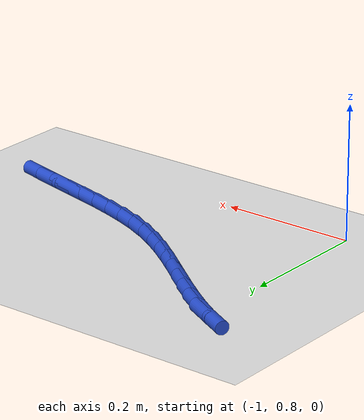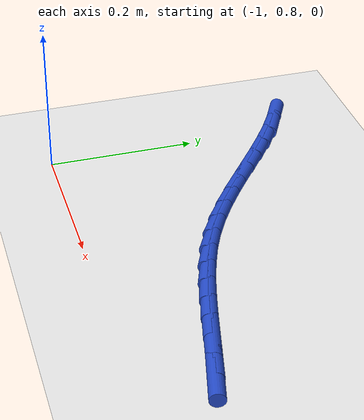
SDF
<sdf version="1.6">
 <world name="default">
  <model name="ground_plane">
   <static>1</static>
   <link name="link">
    <collision name="collision">
     <geometry><plane><normal>0 0 1</normal><size>100 100</size></plane></geometry>
     <surface><friction><ode><mu>100</mu><mu2>50</mu2></ode></friction></surface>
    </collision>
    <visual name="visual">
     <cast_shadows>0</cast_shadows>
     <geometry><plane><normal>0 0 1</normal><size>100 100</size></plane></geometry>
     <material>
      <script><uri>file://media/materials/scripts/gazebo.material</uri><name>Gazebo/WhiteGlow</name></script>
     </material>
    </visual>
   </link>
  </model>
  <model name="line">
   <link name="link_34">
    <pose>-0.5255574176818177 0.8884533875786376 0.01 0 1.57 -0.24859931215305123</pose>
    <collision name="collision">
     <geometry><cylinder><radius>0.01</radius><length>0.08</length></cylinder></geometry>
    </collision>
    <visual name="visual">
     <material>
      <script><name>Gazebo/Blue</name><uri>file://media/materials/scripts/gazebo.material</uri></script>
     </material>
     <geometry><cylinder><radius>0.01</radius><length>0.08</length></cylinder></geometry>
    </visual>
   </link>
   <link name="link_35">
    <pose>-0.5571381462530762 0.8964701694753467 0.01 0 1.57 -0.2358273862545495</pose>
    <collision name="collision">
     <geometry><cylinder><radius>0.01</radius><length>0.08</length></cylinder></geometry>
    </collision>
    <visual name="visual">
     <material>
      <script><name>Gazebo/Blue</name><uri>file://media/materials/scripts/gazebo.material</uri></script>
     </material>
     <geometry><cylinder><radius>0.01</radius><length>0.08</length></cylinder></geometry>
    </visual>
   </link>
   <link name="link_36">
    <pose>-0.5889480391941898 0.9041140451527288 0.01 0 1.57 -0.23601273243932025</pose>
    <collision name="collision">
     <geometry><cylinder><radius>0.01</radius><length>0.08</length></cylinder></geometry>
    </collision>
    <visual name="visual">
     <material>
      <script><name>Gazebo/Blue</name><uri>file://media/materials/scripts/gazebo.material</uri></script>
     </material>
     <geometry><cylinder><radius>0.01</radius><length>0.08</length></cylinder></geometry>
    </visual>
   </link>
   <link name="link_37">
    <pose>-0.6208033666331018 0.9117750841547666 0.01 0 1.57 -0.24909951020728224</pose>
    <collision name="collision">
     <geometry><cylinder><radius>0.01</radius><length>0.08</length></cylinder></geometry>
    </collision>
    <visual name="visual">
     <material>
      <script><name>Gazebo/Blue</name><uri>file://media/materials/scripts/gazebo.material</uri></script>
     </material>
     <geometry><cylinder><radius>0.01</radius><length>0.08</length></cylinder></geometry>
    </visual>
   </link>
   <link name="link_38">
    <pose>-0.6525203986977548 0.9198433560254419 0.01 0 1.57 -0.27522175141478333</pose>
    <collision name="collision">
     <geometry><cylinder><radius>0.01</radius><length>0.08</length></cylinder></geometry>
    </collision>
    <visual name="visual">
     <material>
      <script><name>Gazebo/Blue</name><uri>file://media/materials/scripts/gazebo.material</uri></script>
     </material>
     <geometry><cylinder><radius>0.01</radius><length>0.08</length></cylinder></geometry>
    </visual>
   </link>
   <link name="link_39">
    <pose>-0.6839154055160909 0.9287089303087362 0.01 0 1.57 -0.3146400045188415</pose>
    <collision name="collision">
     <geometry><cylinder><radius>0.01</radius><length>0.08</length></cylinder></geometry>
    </collision>
    <visual name="visual">
     <material>
      <script><name>Gazebo/Blue</name><uri>file://media/materials/scripts/gazebo.material</uri></script>
     </material>
     <geometry><cylinder><radius>0.01</radius><length>0.08</length></cylinder></geometry>
    </visual>
   </link>
   <link name="link_40">
    <pose>-0.7148046572160536 0.9387618765486323 0.01 0 1.57 -0.3676091250936983</pose>
    <collision name="collision">
     <geometry><cylinder><radius>0.01</radius><length>0.08</length></cylinder></geometry>
    </collision>
    <visual name="visual">
     <material>
      <script><name>Gazebo/Blue</name><uri>file://media/materials/scripts/gazebo.material</uri></script>
     </material>
     <geometry><cylinder><radius>0.01</radius><length>0.08</length></cylinder></geometry>
    </visual>
   </link>
   <link name="link_41">
    <pose>-0.7450044239255853 0.9503922642891117 0.01 0 1.57 -0.43416515468444045</pose>
    <collision name="collision">
     <geometry><cylinder><radius>0.01</radius><length>0.08</length></cylinder></geometry>
    </collision>
    <visual name="visual">
     <material>
      <script><name>Gazebo/Blue</name><uri>file://media/materials/scripts/gazebo.material</uri></script>
     </material>
     <geometry><cylinder><radius>0.01</radius><length>0.08</length></cylinder></geometry>
    </visual>
   </link>
   <link name="link_42">
    <pose>-0.7743309757726284 0.9639901630741567 0.01 0 1.57 -0.5089399456784874</pose>
    <collision name="collision">
     <geometry><cylinder><radius>0.01</radius><length>0.08</length></cylinder></geometry>
    </collision>
    <visual name="visual">
     <material>
      <script><name>Gazebo/Blue</name><uri>file://media/materials/scripts/gazebo.material</uri></script>
     </material>
     <geometry><cylinder><radius>0.01</radius><length>0.08</length></cylinder></geometry>
    </visual>
   </link>
   <link name="link_43">
    <pose>-0.8026647938310223 0.9797995215825887 0.01 0 1.57 -0.5715035804731994</pose>
    <collision name="collision">
     <geometry><cylinder><radius>0.01</radius><length>0.08</length></cylinder></geometry>
    </collision>
    <visual name="visual">
     <material>
      <script><name>Gazebo/Blue</name><uri>file://media/materials/scripts/gazebo.material</uri></script>
     </material>
     <geometry><cylinder><radius>0.01</radius><length>0.08</length></cylinder></geometry>
    </visual>
   </link>
   <link name="link_44">
    <pose>-0.8301463347246314 0.9974726782660338 0.01 0 1.57 -0.6170683168024339</pose>
    <collision name="collision">
     <geometry><cylinder><radius>0.01</radius><length>0.08</length></cylinder></geometry>
    </collision>
    <visual name="visual">
     <material>
      <script><name>Gazebo/Blue</name><uri>file://media/materials/scripts/gazebo.material</uri></script>
     </material>
     <geometry><cylinder><radius>0.01</radius><length>0.08</length></cylinder></geometry>
    </visual>
   </link>
   <link name="link_45">
    <pose>-0.8569818414294227 1.0165122656568082 0.01 0 1.57 -0.6462078906689612</pose>
    <collision name="collision">
     <geometry><cylinder><radius>0.01</radius><length>0.08</length></cylinder></geometry>
    </collision>
    <visual name="visual">
     <material>
      <script><name>Gazebo/Blue</name><uri>file://media/materials/scripts/gazebo.material</uri></script>
     </material>
     <geometry><cylinder><radius>0.01</radius><length>0.08</length></cylinder></geometry>
    </visual>
   </link>
   <link name="link_46">
    <pose>-0.88337755692565 1.0364209162774782 0.01 0 1.57 -0.6594215010777789</pose>
    <collision name="collision">
     <geometry><cylinder><radius>0.01</radius><length>0.08</length></cylinder></geometry>
    </collision>
    <visual name="visual">
     <material>
      <script><name>Gazebo/Blue</name><uri>file://media/materials/scripts/gazebo.material</uri></script>
     </material>
     <geometry><cylinder><radius>0.01</radius><length>0.08</length></cylinder></geometry>
    </visual>
   </link>
   <link name="link_47">
    <pose>-0.9095397241935659 1.056701262650609 0.01 0 1.57 -0.6569188849797652</pose>
    <collision name="collision">
     <geometry><cylinder><radius>0.01</radius><length>0.08</length></cylinder></geometry>
    </collision>
    <visual name="visual">
     <material>
      <script><name>Gazebo/Blue</name><uri>file://media/materials/scripts/gazebo.material</uri></script>
     </material>
     <geometry><cylinder><radius>0.01</radius><length>0.08</length></cylinder></geometry>
    </visual>
   </link>
   <link name="link_48">
    <pose>-0.9356745862134226 1.0768559372987652 0.01 0 1.57 -0.6385279612100464</pose>
    <collision name="collision">
     <geometry><cylinder><radius>0.01</radius><length>0.08</length></cylinder></geometry>
    </collision>
    <visual name="visual">
     <material>
      <script><name>Gazebo/Blue</name><uri>file://media/materials/scripts/gazebo.material</uri></script>
     </material>
     <geometry><cylinder><radius>0.01</radius><length>0.08</length></cylinder></geometry>
    </visual>
   </link>
   <link name="link_49">
    <pose>-0.9619883859654738 1.0963875727445132 0.01 0 1.57 -0.6037020902337749</pose>
    <collision name="collision">
     <geometry><cylinder><radius>0.01</radius><length>0.08</length></cylinder></geometry>
    </collision>
    <visual name="visual">
     <material>
      <script><name>Gazebo/Blue</name><uri>file://media/materials/scripts/gazebo.material</uri></script>
     </material>
     <geometry><cylinder><radius>0.01</radius><length>0.08</length></cylinder></geometry>
    </visual>
   </link>
   <link name="link_50">
    <pose>-0.9886873664299722 1.1147988015104182 0.01 0 1.57 -0.5516379656487751</pose>
    <collision name="collision">
     <geometry><cylinder><radius>0.01</radius><length>0.08</length></cylinder></geometry>
    </collision>
    <visual name="visual">
     <material>
      <script><name>Gazebo/Blue</name><uri>file://media/materials/scripts/gazebo.material</uri></script>
     </material>
     <geometry><cylinder><radius>0.01</radius><length>0.08</length></cylinder></geometry>
    </visual>
   </link>
   <link name="link_51">
    <pose>-1.0159777705871709 1.131592256119046 0.01 0 1.57 -0.4815493712645671</pose>
    <collision name="collision">
     <geometry><cylinder><radius>0.01</radius><length>0.08</length></cylinder></geometry>
    </collision>
    <visual name="visual">
     <material>
      <script><name>Gazebo/Blue</name><uri>file://media/materials/scripts/gazebo.material</uri></script>
     </material>
     <geometry><cylinder><radius>0.01</radius><length>0.08</length></cylinder></geometry>
    </visual>
   </link>
  </model>
 </world>
</sdf>
